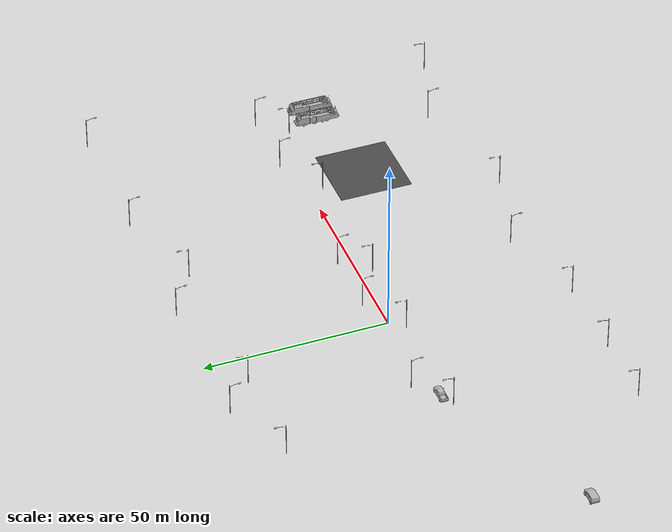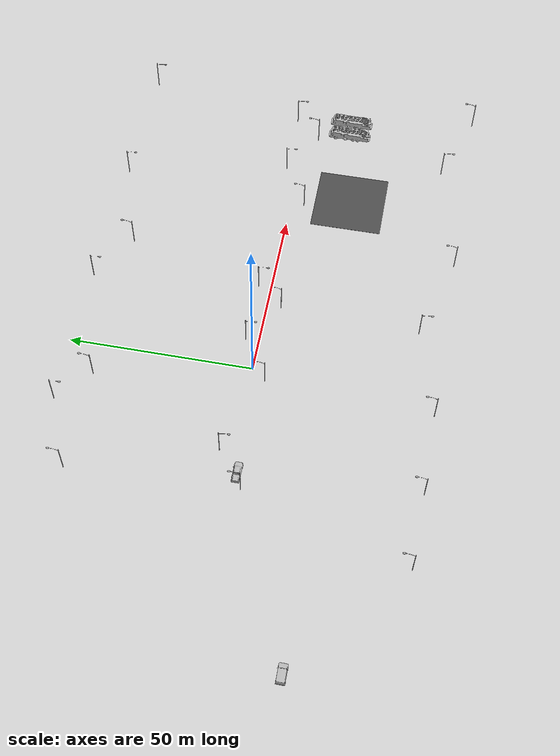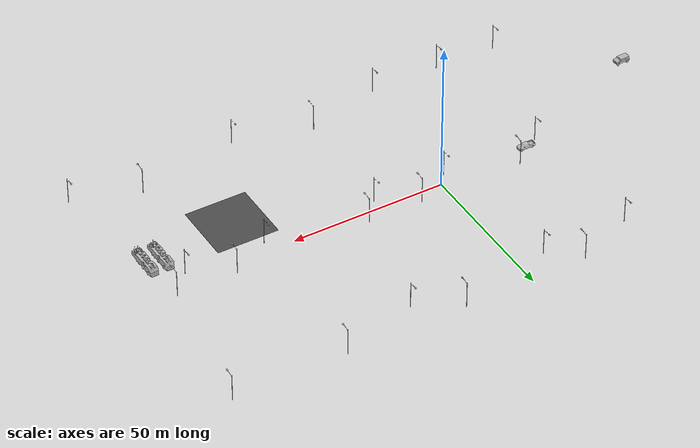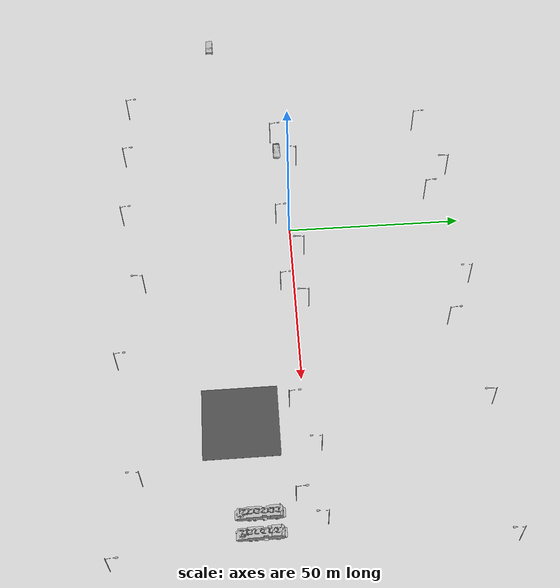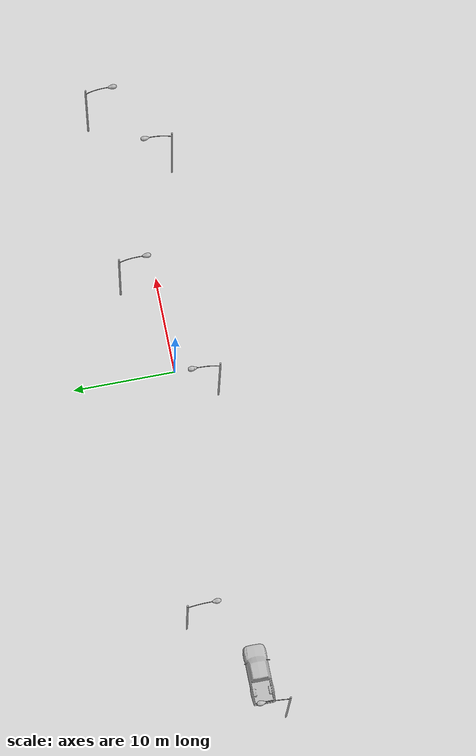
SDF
<sdf version="1.6">
 <world name="default">
  <scene>
   <grid>0</grid>
   <origin_visual>0</origin_visual>
   <ambient>1 1 1 1</ambient>
   <sky><clouds><speed>10</speed></clouds></sky>
   <background>0.35 0.35 0.35 1</background>
   <shadows>1</shadows>
  </scene>
  <physics name="default_physics" default="0" type="ode">
   <ode>
    <solver>
     <type>quick</type>
     <iters>200</iters>
     <sor>1.3</sor>
     <use_dynamic_moi_rescaling>0</use_dynamic_moi_rescaling>
    </solver>
    <constraints>
     <cfm>0</cfm>
     <erp>0.2</erp>
     <contact_max_correcting_vel>100</contact_max_correcting_vel>
     <contact_surface_layer>0.001</contact_surface_layer>
    </constraints>
   </ode>
   <max_step_size>0.004</max_step_size>
   <real_time_factor>1000</real_time_factor>
   <real_time_update_rate>250</real_time_update_rate>
  </physics>
  <light name="sun" type="directional">
   <pose>0 0 10 0 -0 0</pose>
   <diffuse>0.8 0.8 0.8 1</diffuse>
   <specular>0.8 0.8 0.8 1</specular>
   <attenuation>
    <range>1000</range>
    <constant>0.9</constant>
    <linear>0.01</linear>
    <quadratic>0.001</quadratic>
   </attenuation>
   <direction>-0.5 0.1 -0.4</direction>
  </light>
  <model name="ground_plane">
   <static>1</static>
   <link name="link">
    <collision name="collision">
     <geometry><plane><normal>0 0 1</normal><size>100 100</size></plane></geometry>
    </collision>
   </link>
  </model>
  <model name="asphalt_plane_74">
   <static>1</static>
   <pose>61.581 -16.664 0 0 -0 0</pose>
   <link name="link">
    <visual name="visual">
     <geometry><box><size>20 20 0.05</size></box></geometry>
     <material>
      <script>
       <uri>model://asphalt_plane/materials/scripts</uri>
       <uri>model://asphalt_plane/materials/textures</uri>
       <name>vrc/asphalt</name>
      </script>
     </material>
    </visual>
   </link>
  </model>
  <model name="lamp_post_189">
   <static>1</static>
   <link name="link">
    <collision name="collision">
     <geometry><mesh><uri>model://lamp_post/meshes/lamp_post.dae</uri><scale>3 3 3</scale></mesh></geometry>
    </collision>
    <visual name="visual">
     <geometry><mesh><uri>model://lamp_post/meshes/lamp_post.dae</uri><scale>3 3 3</scale></mesh></geometry>
    </visual>
   </link>
   <pose>-35.1 -3.7 0 0 -0 3.14</pose>
  </model>
  <model name="lamp_post_190">
   <static>1</static>
   <link name="link">
    <collision name="collision">
     <geometry><mesh><uri>model://lamp_post/meshes/lamp_post.dae</uri><scale>3 3 3</scale></mesh></geometry>
    </collision>
    <visual name="visual">
     <geometry><mesh><uri>model://lamp_post/meshes/lamp_post.dae</uri><scale>3 3 3</scale></mesh></geometry>
    </visual>
   </link>
   <pose>-25.2 3.7 0 0 -0 0</pose>
  </model>
  <model name="lamp_post_191">
   <static>1</static>
   <link name="link">
    <collision name="collision">
     <geometry><mesh><uri>model://lamp_post/meshes/lamp_post.dae</uri><scale>3 3 3</scale></mesh></geometry>
    </collision>
    <visual name="visual">
     <geometry><mesh><uri>model://lamp_post/meshes/lamp_post.dae</uri><scale>3 3 3</scale></mesh></geometry>
    </visual>
   </link>
   <pose>-3 -3.7 0 0 -0 3.14</pose>
  </model>
  <model name="lamp_post_192">
   <static>1</static>
   <link name="link">
    <collision name="collision">
     <geometry><mesh><uri>model://lamp_post/meshes/lamp_post.dae</uri><scale>3 3 3</scale></mesh></geometry>
    </collision>
    <visual name="visual">
     <geometry><mesh><uri>model://lamp_post/meshes/lamp_post.dae</uri><scale>3 3 3</scale></mesh></geometry>
    </visual>
   </link>
   <pose>9 3.7 0 0 -0 0</pose>
  </model>
  <model name="lamp_post_193">
   <static>1</static>
   <link name="link">
    <collision name="collision">
     <geometry><mesh><uri>model://lamp_post/meshes/lamp_post.dae</uri><scale>3 3 3</scale></mesh></geometry>
    </collision>
    <visual name="visual">
     <geometry><mesh><uri>model://lamp_post/meshes/lamp_post.dae</uri><scale>3 3 3</scale></mesh></geometry>
    </visual>
   </link>
   <pose>21 -3.7 0 0 -0 3.14</pose>
  </model>
  <model name="lamp_post_194">
   <static>1</static>
   <link name="link">
    <collision name="collision">
     <geometry><mesh><uri>model://lamp_post/meshes/lamp_post.dae</uri><scale>3 3 3</scale></mesh></geometry>
    </collision>
    <visual name="visual">
     <geometry><mesh><uri>model://lamp_post/meshes/lamp_post.dae</uri><scale>3 3 3</scale></mesh></geometry>
    </visual>
   </link>
   <pose>27 3.7 0 0 -0 0</pose>
  </model>
  <model name="lamp_post_195">
   <static>1</static>
   <link name="link">
    <collision name="collision">
     <geometry><mesh><uri>model://lamp_post/meshes/lamp_post.dae</uri><scale>3 3 3</scale></mesh></geometry>
    </collision>
    <visual name="visual">
     <geometry><mesh><uri>model://lamp_post/meshes/lamp_post.dae</uri><scale>3 3 3</scale></mesh></geometry>
    </visual>
   </link>
   <pose>58 -3.7 0 0 -0 3.14</pose>
  </model>
  <model name="lamp_post_196">
   <static>1</static>
   <link name="link">
    <collision name="collision">
     <geometry><mesh><uri>model://lamp_post/meshes/lamp_post.dae</uri><scale>3 3 3</scale></mesh></geometry>
    </collision>
    <visual name="visual">
     <geometry><mesh><uri>model://lamp_post/meshes/lamp_post.dae</uri><scale>3 3 3</scale></mesh></geometry>
    </visual>
   </link>
   <pose>71 3.7 0 0 -0 0</pose>
  </model>
  <model name="lamp_post_197">
   <static>1</static>
   <link name="link">
    <collision name="collision">
     <geometry><mesh><uri>model://lamp_post/meshes/lamp_post.dae</uri><scale>3 3 3</scale></mesh></geometry>
    </collision>
    <visual name="visual">
     <geometry><mesh><uri>model://lamp_post/meshes/lamp_post.dae</uri><scale>3 3 3</scale></mesh></geometry>
    </visual>
   </link>
   <pose>84 -3.7 0 0 -0 3.14</pose>
  </model>
  <model name="lamp_post_198">
   <static>1</static>
   <link name="link">
    <collision name="collision">
     <geometry><mesh><uri>model://lamp_post/meshes/lamp_post.dae</uri><scale>3 3 3</scale></mesh></geometry>
    </collision>
    <visual name="visual">
     <geometry><mesh><uri>model://lamp_post/meshes/lamp_post.dae</uri><scale>3 3 3</scale></mesh></geometry>
    </visual>
   </link>
   <pose>90.5 3.7 0 0 -0 0</pose>
  </model>
  <gravity>0 0 -9.8</gravity>
  <magnetic_field>6e-06 2.3e-05 -4.2e-05</magnetic_field>
  <atmosphere type="adiabatic"/>
  <spherical_coordinates>
   <surface_model>EARTH_WGS84</surface_model>
   <latitude_deg>0</latitude_deg>
   <longitude_deg>0</longitude_deg>
   <elevation>0</elevation>
   <heading_deg>0</heading_deg>
  </spherical_coordinates>
  <light name="user_directional_light_0" type="directional">
   <pose>24.0343 3.49866 1 0 -0 0</pose>
   <diffuse>0.5 0.5 0.5 1</diffuse>
   <specular>0.1 0.1 0.1 1</specular>
   <direction>0.1 0.1 -0.9</direction>
   <attenuation>
    <range>20</range>
    <constant>0.5</constant>
    <linear>0.01</linear>
    <quadratic>0.001</quadratic>
   </attenuation>
  </light>
  <light name="user_point_light_0" type="point">
   <pose>-70.5235 -10.3411 1 0 -0 0</pose>
   <diffuse>0.5 0.5 0.5 1</diffuse>
   <specular>0.1 0.1 0.1 1</specular>
   <attenuation>
    <range>20</range>
    <constant>0.5</constant>
    <linear>0.01</linear>
    <quadratic>0.001</quadratic>
   </attenuation>
   <cast_shadows>0</cast_shadows>
   <direction>0 0 -1</direction>
  </light>
  <gravity>0 0 -9.8066</gravity>
  <magnetic_field>6e-06 2.3e-05 -4.2e-05</magnetic_field>
  <audio><device>default</device></audio>
  <model name="fire_truck">
   <static>1</static>
   <link name="link">
    <collision name="collision">
     <geometry>
      <mesh><scale>0.1 0.1 0.1</scale><uri>model://fire_truck/meshes/fire_truck.obj</uri></mesh>
     </geometry>
    </collision>
    <visual name="visual">
     <geometry>
      <mesh><scale>0.1 0.1 0.1</scale><uri>model://fire_truck/meshes/fire_truck.obj</uri></mesh>
     </geometry>
    </visual>
   </link>
   <pose>87.0005 -12.4275 0 0 -0 0</pose>
  </model>
  <model name="fire_truck_clone">
   <static>1</static>
   <link name="link">
    <collision name="collision">
     <geometry>
      <mesh><scale>0.1 0.1 0.1</scale><uri>model://fire_truck/meshes/fire_truck.obj</uri></mesh>
     </geometry>
    </collision>
    <visual name="visual">
     <geometry>
      <mesh><scale>0.1 0.1 0.1</scale><uri>model://fire_truck/meshes/fire_truck.obj</uri></mesh>
     </geometry>
    </visual>
   </link>
   <pose>92.1209 -12.3197 0 0 -0 0</pose>
  </model>
  <model name="pickup">
   <static>1</static>
   <link name="link">
    <collision name="collision">
     <pose>0 0 0 0 0 -1.5708</pose>
     <geometry><mesh><uri>model://pickup/meshes/pickup.dae</uri></mesh></geometry>
    </collision>
    <visual name="visual">
     <pose>0 0 0 0 0 -1.5708</pose>
     <geometry><mesh><uri>model://pickup/meshes/pickup.dae</uri></mesh></geometry>
    </visual>
   </link>
   <pose>-30.7301 -2.0073 0 0 -0 0</pose>
  </model>
  <model name="lamp_post_189_clone">
   <static>1</static>
   <link name="link">
    <collision name="collision">
     <geometry><mesh><uri>model://lamp_post/meshes/lamp_post.dae</uri><scale>3 3 3</scale></mesh></geometry>
    </collision>
    <visual name="visual">
     <geometry><mesh><uri>model://lamp_post/meshes/lamp_post.dae</uri><scale>3 3 3</scale></mesh></geometry>
    </visual>
   </link>
   <pose>-37.125 41.2938 0 0 -0 3.14</pose>
  </model>
  <model name="lamp_post_189_clone_0">
   <static>1</static>
   <link name="link">
    <collision name="collision">
     <geometry><mesh><uri>model://lamp_post/meshes/lamp_post.dae</uri><scale>3 3 3</scale></mesh></geometry>
    </collision>
    <visual name="visual">
     <geometry><mesh><uri>model://lamp_post/meshes/lamp_post.dae</uri><scale>3 3 3</scale></mesh></geometry>
    </visual>
   </link>
   <pose>-9.06195 41.2347 0 0 -0 3.14</pose>
  </model>
  <model name="lamp_post_189_clone_1">
   <static>1</static>
   <link name="link">
    <collision name="collision">
     <geometry><mesh><uri>model://lamp_post/meshes/lamp_post.dae</uri><scale>3 3 3</scale></mesh></geometry>
    </collision>
    <visual name="visual">
     <geometry><mesh><uri>model://lamp_post/meshes/lamp_post.dae</uri><scale>3 3 3</scale></mesh></geometry>
    </visual>
   </link>
   <pose>35.9015 41.4754 0 0 -0 3.14</pose>
  </model>
  <model name="lamp_post_190_clone">
   <static>1</static>
   <link name="link">
    <collision name="collision">
     <geometry><mesh><uri>model://lamp_post/meshes/lamp_post.dae</uri><scale>3 3 3</scale></mesh></geometry>
    </collision>
    <visual name="visual">
     <geometry><mesh><uri>model://lamp_post/meshes/lamp_post.dae</uri><scale>3 3 3</scale></mesh></geometry>
    </visual>
   </link>
   <pose>-18.283 49.2228 0 0 -0 0</pose>
  </model>
  <model name="lamp_post_190_clone_0">
   <static>1</static>
   <link name="link">
    <collision name="collision">
     <geometry><mesh><uri>model://lamp_post/meshes/lamp_post.dae</uri><scale>3 3 3</scale></mesh></geometry>
    </collision>
    <visual name="visual">
     <geometry><mesh><uri>model://lamp_post/meshes/lamp_post.dae</uri><scale>3 3 3</scale></mesh></geometry>
    </visual>
   </link>
   <pose>22.2379 49.5568 0 0 -0 0</pose>
  </model>
  <model name="lamp_post_190_clone_1">
   <static>1</static>
   <link name="link">
    <collision name="collision">
     <geometry><mesh><uri>model://lamp_post/meshes/lamp_post.dae</uri><scale>3 3 3</scale></mesh></geometry>
    </collision>
    <visual name="visual">
     <geometry><mesh><uri>model://lamp_post/meshes/lamp_post.dae</uri><scale>3 3 3</scale></mesh></geometry>
    </visual>
   </link>
   <pose>61.0928 49.3102 0 0 -0 0</pose>
  </model>
  <model name="lamp_post_190_clone_2">
   <static>1</static>
   <link name="link">
    <collision name="collision">
     <geometry><mesh><uri>model://lamp_post/meshes/lamp_post.dae</uri><scale>3 3 3</scale></mesh></geometry>
    </collision>
    <visual name="visual">
     <geometry><mesh><uri>model://lamp_post/meshes/lamp_post.dae</uri><scale>3 3 3</scale></mesh></geometry>
    </visual>
   </link>
   <pose>97.9005 49.2518 0 0 -0 0</pose>
  </model>
  <model name="lamp_post_190_clone_3">
   <static>1</static>
   <link name="link">
    <collision name="collision">
     <geometry><mesh><uri>model://lamp_post/meshes/lamp_post.dae</uri><scale>3 3 3</scale></mesh></geometry>
    </collision>
    <visual name="visual">
     <geometry><mesh><uri>model://lamp_post/meshes/lamp_post.dae</uri><scale>3 3 3</scale></mesh></geometry>
    </visual>
   </link>
   <pose>19.3845 -41.7995 0 0 -0 0</pose>
  </model>
  <model name="lamp_post_190_clone_4">
   <static>1</static>
   <link name="link">
    <collision name="collision">
     <geometry><mesh><uri>model://lamp_post/meshes/lamp_post.dae</uri><scale>3 3 3</scale></mesh></geometry>
    </collision>
    <visual name="visual">
     <geometry><mesh><uri>model://lamp_post/meshes/lamp_post.dae</uri><scale>3 3 3</scale></mesh></geometry>
    </visual>
   </link>
   <pose>77.5152 -41.5905 0 0 -0 0</pose>
  </model>
  <model name="lamp_post_191_clone">
   <static>1</static>
   <link name="link">
    <collision name="collision">
     <geometry><mesh><uri>model://lamp_post/meshes/lamp_post.dae</uri><scale>3 3 3</scale></mesh></geometry>
    </collision>
    <visual name="visual">
     <geometry><mesh><uri>model://lamp_post/meshes/lamp_post.dae</uri><scale>3 3 3</scale></mesh></geometry>
    </visual>
   </link>
   <pose>-28.1303 -48.5993 0 0 -0 3.14</pose>
  </model>
  <model name="lamp_post_191_clone_0">
   <static>1</static>
   <link name="link">
    <collision name="collision">
     <geometry><mesh><uri>model://lamp_post/meshes/lamp_post.dae</uri><scale>3 3 3</scale></mesh></geometry>
    </collision>
    <visual name="visual">
     <geometry><mesh><uri>model://lamp_post/meshes/lamp_post.dae</uri><scale>3 3 3</scale></mesh></geometry>
    </visual>
   </link>
   <pose>-5.33262 -48.6418 0 0 -0 3.14</pose>
  </model>
  <model name="lamp_post_191_clone_1">
   <static>1</static>
   <link name="link">
    <collision name="collision">
     <geometry><mesh><uri>model://lamp_post/meshes/lamp_post.dae</uri><scale>3 3 3</scale></mesh></geometry>
    </collision>
    <visual name="visual">
     <geometry><mesh><uri>model://lamp_post/meshes/lamp_post.dae</uri><scale>3 3 3</scale></mesh></geometry>
    </visual>
   </link>
   <pose>43.7732 -48.7325 0 0 -0 3.14</pose>
  </model>
  <model name="lamp_post_191_clone_2">
   <static>1</static>
   <link name="link">
    <collision name="collision">
     <geometry><mesh><uri>model://lamp_post/meshes/lamp_post.dae</uri><scale>3 3 3</scale></mesh></geometry>
    </collision>
    <visual name="visual">
     <geometry><mesh><uri>model://lamp_post/meshes/lamp_post.dae</uri><scale>3 3 3</scale></mesh></geometry>
    </visual>
   </link>
   <pose>98.4393 -48.7953 0 0 -0 3.14</pose>
  </model>
  <model name="lamp_post_191_clone_3">
   <static>1</static>
   <link name="link">
    <collision name="collision">
     <geometry><mesh><uri>model://lamp_post/meshes/lamp_post.dae</uri><scale>3 3 3</scale></mesh></geometry>
    </collision>
    <visual name="visual">
     <geometry><mesh><uri>model://lamp_post/meshes/lamp_post.dae</uri><scale>3 3 3</scale></mesh></geometry>
    </visual>
   </link>
   <pose>-48.2811 -48.0738 0 0 -0 3.14</pose>
  </model>
  <model name="suv_clone">
   <static>1</static>
   <link name="link">
    <collision name="collision">
     <pose>0 0 0 0 0 -1.5708</pose>
     <geometry><mesh><scale>0.06 0.06 0.06</scale><uri>model://suv/meshes/suv.obj</uri></mesh></geometry>
    </collision>
    <visual name="visual">
     <pose>0 0 0 0 0 -1.5708</pose>
     <geometry><mesh><scale>0.06 0.06 0.06</scale><uri>model://suv/meshes/suv.obj</uri></mesh></geometry>
    </visual>
   </link>
   <pose>-78.8329 -22.1448 0 0 -0 0</pose>
  </model>
 </world>
</sdf>
